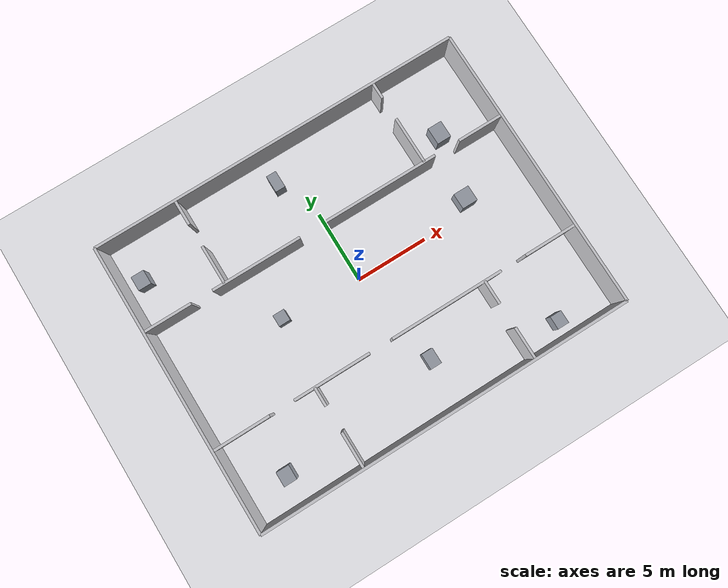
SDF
<?xml version="1.0"?>
<sdf version="1.9"><world name="new_room_world">
<plugin filename="gz-sim-physics-system" name="gz::sim::systems::Physics"/><plugin filename="gz-sim-user-commands-system" name="gz::sim::systems::UserCommands"/><plugin filename="gz-sim-scene-broadcaster-system" name="gz::sim::systems::SceneBroadcaster"/><plugin filename="gz-sim-sensors-system" name="gz::sim::systems::Sensors"><render_engine>ogre2</render_engine></plugin><plugin filename="gz-sim-imu-system" name="gz::sim::systems::Imu"/>
<physics name="new_room_realtime" type="ignored"><max_step_size>0.001</max_step_size><real_time_factor>1</real_time_factor></physics><gravity>0 0 -9.8</gravity><scene><ambient>0.85 0.85 0.87 1</ambient><background>0.68 0.68 0.71 1</background><shadows>false</shadows></scene><light name="sun" type="directional"><cast_shadows>false</cast_shadows><pose>0 0 10 0 0 0</pose><diffuse>0.95 0.95 0.95 1</diffuse><direction>-0.3 0.2 -1</direction></light>
<model name="new_room_ground"><static>true</static><link name="ground_link"><collision name="ground_collision"><geometry><plane><normal>0 0 1</normal><size>40 32</size></plane></geometry></collision><visual name="ground_visual"><geometry><plane><normal>0 0 1</normal><size>40 32</size></plane></geometry><material><ambient>0.92 0.92 0.94 1</ambient><diffuse>0.92 0.92 0.94 1</diffuse></material></visual></link></model>
<model name="mini_hospital_structure"><static>true</static><link name="structure">
<collision name="mx048_c000"><pose>0 10 1.25 0 0 0</pose><geometry><box><size>26 0.18 2.5</size></box></geometry></collision><visual name="mx048_v000"><pose>0 10 1.25 0 0 0</pose><geometry><box><size>26 0.18 2.5</size></box></geometry><material><ambient>0.78 0.78 0.80 1</ambient><diffuse>0.78 0.78 0.80 1</diffuse></material></visual>
<collision name="mx048_c001"><pose>0 -10 1.25 0 0 0</pose><geometry><box><size>26 0.18 2.5</size></box></geometry></collision><visual name="mx048_v001"><pose>0 -10 1.25 0 0 0</pose><geometry><box><size>26 0.18 2.5</size></box></geometry><material><ambient>0.78 0.78 0.80 1</ambient><diffuse>0.78 0.78 0.80 1</diffuse></material></visual>
<collision name="mx048_c002"><pose>-13 0 1.25 0 0 0</pose><geometry><box><size>0.18 20 2.5</size></box></geometry></collision><visual name="mx048_v002"><pose>-13 0 1.25 0 0 0</pose><geometry><box><size>0.18 20 2.5</size></box></geometry><material><ambient>0.78 0.78 0.80 1</ambient><diffuse>0.78 0.78 0.80 1</diffuse></material></visual>
<collision name="mx048_c003"><pose>13 0 1.25 0 0 0</pose><geometry><box><size>0.18 20 2.5</size></box></geometry></collision><visual name="mx048_v003"><pose>13 0 1.25 0 0 0</pose><geometry><box><size>0.18 20 2.5</size></box></geometry><material><ambient>0.78 0.78 0.80 1</ambient><diffuse>0.78 0.78 0.80 1</diffuse></material></visual>
<collision name="mx048_c004"><pose>-11.28 3.9 1.25 0 0 0</pose><geometry><box><size>3.26 0.18 2.5</size></box></geometry></collision><visual name="mx048_v004"><pose>-11.28 3.9 1.25 0 0 0</pose><geometry><box><size>3.26 0.18 2.5</size></box></geometry><material><ambient>0.78 0.78 0.80 1</ambient><diffuse>0.78 0.78 0.80 1</diffuse></material></visual>
<collision name="mx048_c005"><pose>-5.025 3.9 1.25 0 0 0</pose><geometry><box><size>6.25 0.18 2.5</size></box></geometry></collision><visual name="mx048_v005"><pose>-5.025 3.9 1.25 0 0 0</pose><geometry><box><size>6.25 0.18 2.5</size></box></geometry><material><ambient>0.78 0.78 0.80 1</ambient><diffuse>0.78 0.78 0.80 1</diffuse></material></visual>
<collision name="mx048_c006"><pose>3.95 3.9 1.25 0 0 0</pose><geometry><box><size>8.1 0.18 2.5</size></box></geometry></collision><visual name="mx048_v006"><pose>3.95 3.9 1.25 0 0 0</pose><geometry><box><size>8.1 0.18 2.5</size></box></geometry><material><ambient>0.78 0.78 0.80 1</ambient><diffuse>0.78 0.78 0.80 1</diffuse></material></visual>
<collision name="mx048_c007"><pose>11.355 3.9 1.25 0 0 0</pose><geometry><box><size>3.11 0.18 2.5</size></box></geometry></collision><visual name="mx048_v007"><pose>11.355 3.9 1.25 0 0 0</pose><geometry><box><size>3.11 0.18 2.5</size></box></geometry><material><ambient>0.78 0.78 0.80 1</ambient><diffuse>0.78 0.78 0.80 1</diffuse></material></visual>
<collision name="mx048_c008"><pose>-10.98 -4.4 1.25 0 0 0</pose><geometry><box><size>3.86 0.18 2.5</size></box></geometry></collision><visual name="mx048_v008"><pose>-10.98 -4.4 1.25 0 0 0</pose><geometry><box><size>3.86 0.18 2.5</size></box></geometry><material><ambient>0.78 0.78 0.80 1</ambient><diffuse>0.78 0.78 0.80 1</diffuse></material></visual>
<collision name="mx048_c009"><pose>-4.675 -4.4 1.25 0 0 0</pose><geometry><box><size>5.35 0.18 2.5</size></box></geometry></collision><visual name="mx048_v009"><pose>-4.675 -4.4 1.25 0 0 0</pose><geometry><box><size>5.35 0.18 2.5</size></box></geometry><material><ambient>0.78 0.78 0.80 1</ambient><diffuse>0.78 0.78 0.80 1</diffuse></material></visual>
<collision name="mx048_c010"><pose>3.55 -4.4 1.25 0 0 0</pose><geometry><box><size>7.9 0.18 2.5</size></box></geometry></collision><visual name="mx048_v010"><pose>3.55 -4.4 1.25 0 0 0</pose><geometry><box><size>7.9 0.18 2.5</size></box></geometry><material><ambient>0.78 0.78 0.80 1</ambient><diffuse>0.78 0.78 0.80 1</diffuse></material></visual>
<collision name="mx048_c011"><pose>11.105 -4.4 1.25 0 0 0</pose><geometry><box><size>3.61 0.18 2.5</size></box></geometry></collision><visual name="mx048_v011"><pose>11.105 -4.4 1.25 0 0 0</pose><geometry><box><size>3.61 0.18 2.5</size></box></geometry><material><ambient>0.78 0.78 0.80 1</ambient><diffuse>0.78 0.78 0.80 1</diffuse></material></visual>
<collision name="mx048_c012"><pose>-7.3 5.25 1.25 0 0 0</pose><geometry><box><size>0.18 2.7 2.5</size></box></geometry></collision><visual name="mx048_v012"><pose>-7.3 5.25 1.25 0 0 0</pose><geometry><box><size>0.18 2.7 2.5</size></box></geometry><material><ambient>0.78 0.78 0.80 1</ambient><diffuse>0.78 0.78 0.80 1</diffuse></material></visual>
<collision name="mx048_c013"><pose>-7.3 9.055 1.25 0 0 0</pose><geometry><box><size>0.18 1.71 2.5</size></box></geometry></collision><visual name="mx048_v013"><pose>-7.3 9.055 1.25 0 0 0</pose><geometry><box><size>0.18 1.71 2.5</size></box></geometry><material><ambient>0.78 0.78 0.80 1</ambient><diffuse>0.78 0.78 0.80 1</diffuse></material></visual>
<collision name="mx048_c014"><pose>7.2 5.55 1.25 0 0 0</pose><geometry><box><size>0.18 3.3 2.5</size></box></geometry></collision><visual name="mx048_v014"><pose>7.2 5.55 1.25 0 0 0</pose><geometry><box><size>0.18 3.3 2.5</size></box></geometry><material><ambient>0.78 0.78 0.80 1</ambient><diffuse>0.78 0.78 0.80 1</diffuse></material></visual>
<collision name="mx048_c015"><pose>7.2 9.355 1.25 0 0 0</pose><geometry><box><size>0.18 1.11 2.5</size></box></geometry></collision><visual name="mx048_v015"><pose>7.2 9.355 1.25 0 0 0</pose><geometry><box><size>0.18 1.11 2.5</size></box></geometry><material><ambient>0.78 0.78 0.80 1</ambient><diffuse>0.78 0.78 0.80 1</diffuse></material></visual>
<collision name="mx048_c016"><pose>-5.9 -8.705 1.25 0 0 0</pose><geometry><box><size>0.18 2.41 2.5</size></box></geometry></collision><visual name="mx048_v016"><pose>-5.9 -8.705 1.25 0 0 0</pose><geometry><box><size>0.18 2.41 2.5</size></box></geometry><material><ambient>0.78 0.78 0.80 1</ambient><diffuse>0.78 0.78 0.80 1</diffuse></material></visual>
<collision name="mx048_c017"><pose>-5.9 -5.05 1.25 0 0 0</pose><geometry><box><size>0.18 1.3 2.5</size></box></geometry></collision><visual name="mx048_v017"><pose>-5.9 -5.05 1.25 0 0 0</pose><geometry><box><size>0.18 1.3 2.5</size></box></geometry><material><ambient>0.78 0.78 0.80 1</ambient><diffuse>0.78 0.78 0.80 1</diffuse></material></visual>
<collision name="mx048_c018"><pose>6.3 -8.83 1.25 0 0 0</pose><geometry><box><size>0.18 2.16 2.5</size></box></geometry></collision><visual name="mx048_v018"><pose>6.3 -8.83 1.25 0 0 0</pose><geometry><box><size>0.18 2.16 2.5</size></box></geometry><material><ambient>0.78 0.78 0.80 1</ambient><diffuse>0.78 0.78 0.80 1</diffuse></material></visual>
<collision name="mx048_c019"><pose>6.3 -5.225 1.25 0 0 0</pose><geometry><box><size>0.18 1.65 2.5</size></box></geometry></collision><visual name="mx048_v019"><pose>6.3 -5.225 1.25 0 0 0</pose><geometry><box><size>0.18 1.65 2.5</size></box></geometry><material><ambient>0.78 0.78 0.80 1</ambient><diffuse>0.78 0.78 0.80 1</diffuse></material></visual>
<collision name="mx048_c020"><pose>-11.8 7.1 0.6 0 0 0</pose><geometry><box><size>0.9 1 1.2</size></box></geometry></collision><visual name="mx048_v020"><pose>-11.8 7.1 0.6 0 0 0</pose><geometry><box><size>0.9 1 1.2</size></box></geometry><material><ambient>0.58 0.60 0.64 1</ambient><diffuse>0.58 0.60 0.64 1</diffuse></material></visual>
<collision name="mx048_c021"><pose>-1.3 8.1 0.6 0 0 0</pose><geometry><box><size>0.7 1.2 1.2</size></box></geometry></collision><visual name="mx048_v021"><pose>-1.3 8.1 0.6 0 0 0</pose><geometry><box><size>0.7 1.2 1.2</size></box></geometry><material><ambient>0.58 0.60 0.64 1</ambient><diffuse>0.58 0.60 0.64 1</diffuse></material></visual>
<collision name="mx048_c022"><pose>9.4 5.3 0.6 0 0 0</pose><geometry><box><size>1 1.2 1.2</size></box></geometry></collision><visual name="mx048_v022"><pose>9.4 5.3 0.6 0 0 0</pose><geometry><box><size>1 1.2 1.2</size></box></geometry><material><ambient>0.58 0.60 0.64 1</ambient><diffuse>0.58 0.60 0.64 1</diffuse></material></visual>
<collision name="mx048_c023"><pose>-10.2 -8 0.6 0 0 0</pose><geometry><box><size>0.9 1 1.2</size></box></geometry></collision><visual name="mx048_v023"><pose>-10.2 -8 0.6 0 0 0</pose><geometry><box><size>0.9 1 1.2</size></box></geometry><material><ambient>0.58 0.60 0.64 1</ambient><diffuse>0.58 0.60 0.64 1</diffuse></material></visual>
<collision name="mx048_c024"><pose>1.1 -6.7 0.6 0 0 0</pose><geometry><box><size>0.8 1.1 1.2</size></box></geometry></collision><visual name="mx048_v024"><pose>1.1 -6.7 0.6 0 0 0</pose><geometry><box><size>0.8 1.1 1.2</size></box></geometry><material><ambient>0.58 0.60 0.64 1</ambient><diffuse>0.58 0.60 0.64 1</diffuse></material></visual>
<collision name="mx048_c025"><pose>9.2 -8.9 0.6 0 0 0</pose><geometry><box><size>0.8 0.9 1.2</size></box></geometry></collision><visual name="mx048_v025"><pose>9.2 -8.9 0.6 0 0 0</pose><geometry><box><size>0.8 0.9 1.2</size></box></geometry><material><ambient>0.58 0.60 0.64 1</ambient><diffuse>0.58 0.60 0.64 1</diffuse></material></visual>
<collision name="mx048_c026"><pose>-5.5 0.4 0.6 0 0 0</pose><geometry><box><size>0.8 0.8 1.2</size></box></geometry></collision><visual name="mx048_v026"><pose>-5.5 0.4 0.6 0 0 0</pose><geometry><box><size>0.8 0.8 1.2</size></box></geometry><material><ambient>0.58 0.60 0.64 1</ambient><diffuse>0.58 0.60 0.64 1</diffuse></material></visual>
<collision name="mx048_c027"><pose>8.5 0.8 0.6 0 0 0</pose><geometry><box><size>1.1 1.1 1.2</size></box></geometry></collision><visual name="mx048_v027"><pose>8.5 0.8 0.6 0 0 0</pose><geometry><box><size>1.1 1.1 1.2</size></box></geometry><material><ambient>0.58 0.60 0.64 1</ambient><diffuse>0.58 0.60 0.64 1</diffuse></material></visual>
</link></model></world></sdf>
